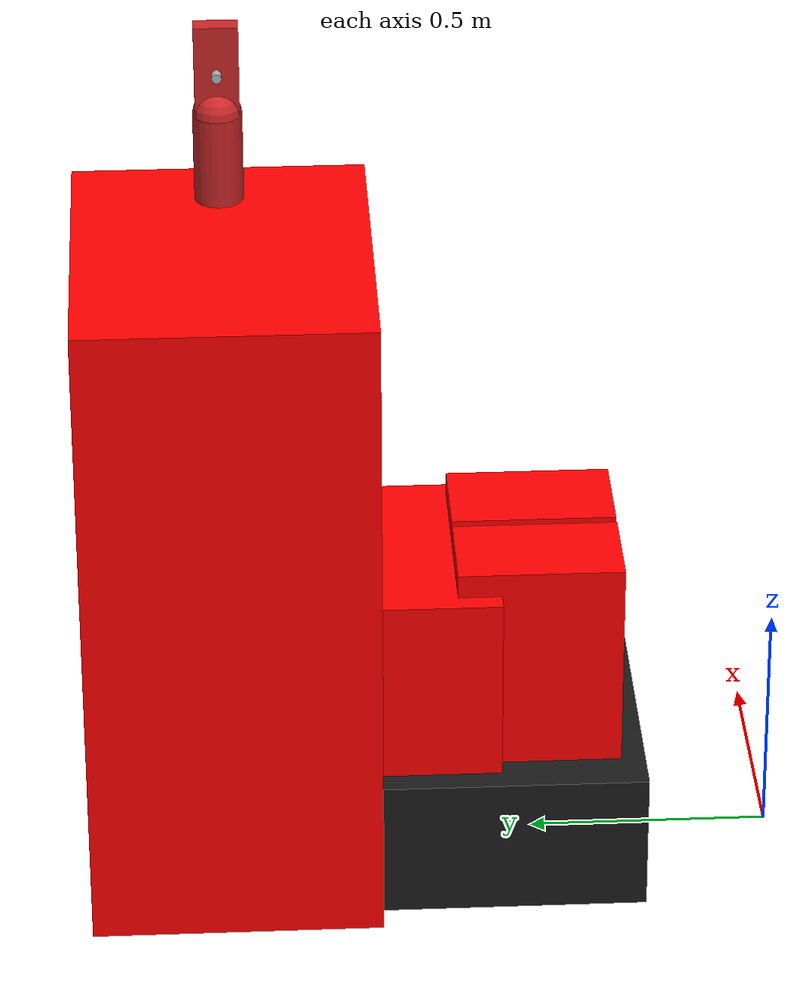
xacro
<?xml version="1.0"?>
<robot xmlns:xacro="http://wiki.ros.org/xacro" name="test">

  <xacro:property name="H" value="2" />

  <xacro:property name="chest_width" value = "${H*0.3662}" />
  <xacro:property name="chest_depth" value = "${H*0.30}" />
  <xacro:property name="chest_height" value = "${H*0.6966}" />

  <!-- Add for independent usage of the person model -->
  <link name="world"/>
  <!-- Chair model -->

  <link name="chair_base" >
    <inertial>
      <origin xyz="0.0 0.0 0.0" />
      <mass value="1.0" />
      <inertia  ixx="1.0" ixy="0.0"  ixz="0.0"  iyy="100.0"  iyz="0.0"  izz="1.0" />
    </inertial>
    <visual>
      <origin xyz="0.0 0.0 0.0" rpy="0.0 0.0 0.0" />
      <geometry>
        <box size="0.60 1.00 0.30"/>
      </geometry>
      <material name="LightGrey">
        <color rgba="0.1 0.1 0.1 1"/>
      </material>
    </visual>
    <collision>
      <origin xyz="0.0 0.0 0.0" rpy="0.0 0.0 0.0" />
      <geometry>
        <box size="0.60 1.00 0.30"/>
      </geometry>
    </collision>
  </link>
  <gazebo reference="chair_base">
    <material>Gazebo/Gray</material>
  </gazebo>

  <joint name="chair_base_joint" type="fixed">
    <parent link="world" />
    <child link = "chair_base" />
    <origin xyz="0.0 0.78 0.15" rpy="0.0 0.0 0.0" />
  </joint>

  <!-- Hip -->

  <link name="body_hip" >
    <inertial>
      <origin xyz="0.0 0.0 0.0" />
      <mass value="1.0" />
      <inertia  ixx="1.0" ixy="0.0"  ixz="0.0"  iyy="100.0"  iyz="0.0"  izz="1.0" />
    </inertial>
    <visual>
      <geometry>
        <box size="0.50 0.40 0.40"/>
        <!--box size="0.40 0.20 0.50"/-->
      </geometry>
      <material name="red">
          <color rgba="1 0 0 1"/>
      </material>
    </visual>
    <collision>
      <origin xyz="0.0 0.0 0.0" rpy="0.0 0.0 0.0" />
      <geometry>
        <box size="0.50 0.40 0.40"/>
        <!--box size="0.40 0.20 0.50"/-->     <!-- (0.387*H) chest height in y direction, (0.259*H)  chest width in z direction-->
      </geometry>
    </collision>
  </link>
  <gazebo reference="body_hip">
    <material>Gazebo/Red</material>
  </gazebo>

  <joint name="body_hip_joint" type="fixed">
   <parent link="chair_base" />
   <child link = "body_hip" />
   <origin xyz="0.0 0.0 0.35" rpy="0.0 0.0 0.0"/>
   <!--origin xyz="0.0 -0.40 -0.2273" rpy="1.57 0.0 -1.57" /-->
  </joint>

<!-- Chest -->
  <link name="body_chest" >
    <inertial>
      <origin xyz="0.0 0.0 0.0" />
      <mass value="1.0" />
      <inertia  ixx="1.0" ixy="0.0"  ixz="0.0"  iyy="100.0"  iyz="0.0"  izz="1.0" />
    </inertial>
    <visual>
      <origin xyz="0.0 0.0 0.0" rpy="0.0 0.0 0.0" />
      <geometry>
        <box size="${chest_width} ${chest_depth}  ${chest_height}"/>
        <!--box size="0.30 0.6966  0.3662"/-->     <!-- (0.387*H) chest height in y direction, (0.259*H)  chest width in z direction-->
      </geometry>
      <material name="red">
        <color rgba="1 0 0 1"/>
      </material>
    </visual>
    <collision>
      <origin xyz="0.0 0.0 0.0" rpy="0.0 0.0 0.0" />
      <geometry>
        <box size="${chest_width} ${chest_depth}  ${chest_height}"/>
        <!--box size="0.30 0.6966  0.3662"/-->     <!-- (0.387*H) chest height in y direction, (0.259*H)  chest width in z direction-->
      </geometry>
    </collision>
  </link>
  <gazebo reference="body_chest">
    <material>Gazebo/Red</material>
  </gazebo>

  <joint name="body_chest_joint" type="fixed">
    <parent link="body_hip" />
    <child link = "body_chest" />
    <origin xyz="0.0 0.35 0.20" rpy="0.0 0.0 0.0"/>
    <!--origin xyz="0.0 -0.05 0.0083" rpy="1.57 0.0 -1.57" /-->   <!-- (0.0 -0.25 0.1483)   (0.387*H/2)-20 origin in z direction -->
  </joint>

  <!-- Head -->
  <link name="body_head" >
    <inertial>
      <origin xyz="0.0 0.0 0.0" />
      <mass value="1.0" />
      <inertia  ixx="1.0" ixy="0.0"  ixz="0.0"  iyy="100.0"  iyz="0.0"  izz="1.0" />
    </inertial>
    <visual>
      <geometry>
        <sphere radius= "0.11"/>   <!-- (0.13*H/2) head radius -->
      </geometry>
      <material name="red">
        <color rgba="1 0 0 1"/>
      </material>
    </visual>
    <collision>
      <geometry>
        <sphere radius= "0.11"/>
      </geometry>
    </collision>
  </link>
  <gazebo reference="body_head">
    <material>Gazebo/Red</material>
  </gazebo>

  <joint name="body_head_joint" type="fixed">
    <parent link="body_chest" />
    <child link = "body_head" />
    <origin xyz="0.0 0.0 0.4583" rpy="0.0 0.0 0.0" />  <!-- 31 cm + head radius in y direction  -->
  </joint>

  <!-- Legs -->
  <link name="body_Lleg" >
    <inertial>
      <origin xyz="0.0 0.0 0.0" />
      <mass value="1.0" />
      <inertia  ixx="1.0" ixy="0.0"  ixz="0.0"  iyy="100.0"  iyz="0.0"  izz="1.0" />
    </inertial>
    <visual>
      <geometry>
        <box size="0.20 0.34 0.50"/>
      </geometry>
      <material name="red">
        <color rgba="1 0 0 1"/>
      </material>
    </visual>
    <collision>
      <origin xyz="0.0 0.0 0.0" rpy="0.0 0.0 0.0" />
      <geometry>
        <box size="0.20 0.34 0.50"/>
        <!--box size="0.30 0.6966  0.3662"/-->     <!-- (0.387*H) chest height in y direction, (0.259*H)  chest width in z direction-->
      </geometry>
    </collision>
  </link>
  <gazebo reference="body_Lleg">
    <material>Gazebo/Red</material>
  </gazebo>

  <joint name="body_Lleg_joint" type="fixed">
    <parent link="body_hip" />
    <child link = "body_Lleg" />
    <origin xyz="0.11 -0.28 0.0" rpy="0.0 0.0 0.0" />
  </joint>

  <link name="body_Rleg" >
    <inertial>
      <origin xyz="0.0 0.0 0.0" />
      <mass value="1.0" />
      <inertia  ixx="1.0" ixy="0.0"  ixz="0.0"  iyy="100.0"  iyz="0.0"  izz="1.0" />
    </inertial>
    <visual>
      <geometry>
        <box size="0.20 0.34 0.50"/>
      </geometry>
      <material name="red">
        <color rgba="1 0 0 1"/>
      </material>
    </visual>
    <collision>
      <origin xyz="0.0 0.0 0.0" rpy="0.0 0.0 0.0" />
      <geometry>
        <box size="0.20 0.34 0.50"/>
        <!--box size="0.30 0.6966  0.3662"/-->     <!-- (0.387*H) chest height in y direction, (0.259*H)  chest width in z direction-->
      </geometry>
    </collision>
  </link>
  <gazebo reference="body_Rleg">
    <material>Gazebo/Red</material>
  </gazebo>

  <joint name="body_Rleg_joint" type="fixed">
    <parent link="body_hip" />
    <child link = "body_Rleg" />
    <origin xyz="-0.11 -0.28 0.0" rpy="0.0 0.0 0.0" />
  </joint>

<!-- Left Arm -->
  <link name="left_shoulder">
    <inertial>
      <origin xyz="0.0 0.0 0.0" />
      <mass value="1.0" />
      <inertia  ixx="1.0" ixy="0.0"  ixz="0.0"  iyy="100.0"  iyz="0.0"  izz="1.0" />
    </inertial>
    <visual>
      <origin rpy="0 0 0" xyz="0 0 0"/>
      <geometry>
        <sphere radius="0.05"/>
      </geometry>
    </visual>
    <collision>
      <geometry>
        <sphere radius= "0.05"/>
      </geometry>
    </collision>
  </link>
  <gazebo reference="left_shoulder">
    <material>Gazebo/Red</material>
  </gazebo>

  <joint name="LShoulder" type="fixed" >
    <origin xyz="0.2331 0.0 0.2855" />
    <!--origin xyz="0.3583 0.0 0.2855" /-->   <!-- (0.259*H)/2 width in z direction, (0.387*H)/2 chest height in y direction  -->
    <parent link="body_chest" />
    <child link="left_shoulder" />
  </joint>

  <link name="left_humerus">
    <inertial>
      <origin xyz="0.0 0.0 0.0" />
      <mass value="1.0" />
      <inertia  ixx="1.0" ixy="0.0"  ixz="0.0"  iyy="100.0"  iyz="0.0"  izz="1.0" />
    </inertial>
    <visual>
      <origin rpy="0 0 0" xyz="0 0 0.1692"/>
      <geometry>
        <cylinder radius="0.05" length="0.3384"/> <!-- 0.188 H lenght   -->
      </geometry>
      <material name="red">
        <color rgba="1 0 0 1"/>
      </material>
    </visual>
    <collision>
      <origin rpy="0 0 0" xyz="0 0 0.1692"/>
      <geometry>
        <cylinder radius="0.05" length="0.3384"/>
      </geometry>
    </collision>
  </link>
  <gazebo reference="left_humerus">
    <material>Gazebo/Red</material>
  </gazebo>

  <joint name="pilar_arm_joint_x" type="revolute">
    <limit effort="1000.0" lower="-3.14" upper="3.14" velocity="0.5"/>
    <!--limit effort="1000.0" lower="1.57" upper="-1.57" velocity="0.2" /-->
    <axis xyz= "1 0 0" />
    <parent link="left_shoulder" />
    <child link = "virtual_shoulder_y" />
    <origin xyz="0.0 0.0 0.0" rpy="0.0 0.0 0.0" />
  </joint>

  <link name="virtual_shoulder_y">
    <inertial>
      <origin xyz="0.0 0.0 0.0" />
      <mass value="1.0" />
      <inertia  ixx="1.0" ixy="0.0"  ixz="0.0"  iyy="100.0"  iyz="0.0"  izz="1.0" />
    </inertial>
  </link>

  <joint name="pilar_arm_joint_y" type="revolute">
    <limit effort="1000.0" lower="-3.14" upper="3.14" velocity="0.5"/>
    <!--limit effort="1000.0" lower="1.57" upper="-1.57" velocity="0.2" /-->
    <axis xyz= "0 1 0" />
    <parent link="virtual_shoulder_y" />
    <child link = "virtual_shoulder_z" />
    <origin xyz="0.0 0.0 0.0" rpy="0.0 0.0 0.0" />
  </joint>

  <link name="virtual_shoulder_z">
    <inertial>
      <origin xyz="0.0 0.0 0.0" />
      <mass value="1.0" />
      <inertia  ixx="1.0" ixy="0.0"  ixz="0.0"  iyy="100.0"  iyz="0.0"  izz="1.0" />
    </inertial>
  </link>

  <joint name="pilar_arm_joint_z" type="revolute">
    <limit effort="1000.0" lower="-3.14" upper="3.14" velocity="0.5"/>
    <!--limit effort="1000.0" lower="1.57" upper="-1.57" velocity="0.2" /-->
    <axis xyz= "0 0 1" />
    <parent link="virtual_shoulder_z" />
    <child link = "left_humerus" />
    <origin xyz="0.0 0.0 0.0" rpy="0.0 0.0 0.0" />
  </joint>

  <link name="left_elbow_joint">
    <inertial>
      <origin xyz="0.0 0.0 0.0" />
      <mass value="1.0" />
      <inertia  ixx="1.0" ixy="0.0"  ixz="0.0"  iyy="100.0"  iyz="0.0"  izz="1.0" />
    </inertial>
    <visual>
      <origin rpy="0 0 0" xyz="0 0 0"/>
      <geometry>
        <cylinder radius="0.01" length="0.1"/>
      </geometry>
      <material name="LightGrey">
        <color rgba="0.7 0.7 0.7 1.0"/>
      </material>
    </visual>
    <collision>
      <geometry>
        <cylinder radius="0.01" length="0.1"/>
      </geometry>
    </collision>
  </link>
  <gazebo reference="left_elbow_joint">
    <material>Gazebo/Gray</material>
  </gazebo>

  <joint name="LElbow" type="revolute" >
    <limit effort="1000.0" lower="-2.67" upper="0" velocity="0.5" />
    <origin rpy="4.71239 0 0" xyz="0 0 0.3384"/>   <!-- z values changes with dimension of the body , 0.188*H/2 -->
    <axis xyz="0 0 1" />
    <parent link="left_humerus" />
    <child link="left_elbow_joint" />
  </joint>

    <!-- left hand -->

  <link name="left_fore_arm">
    <inertial>
      <origin xyz="0.0 0.0 0.0" />
      <mass value="1.0" />
      <inertia  ixx="1.0" ixy="0.0"  ixz="0.0"  iyy="100.0"  iyz="0.0"  izz="1.0" />
    </inertial>
    <visual>
      <origin rpy="0 0 0" xyz="0 0 0 "/>
      <geometry>
        <cylinder radius="0.05" length="0.261"/> <!-- length values changes with dimension of the body 0.145*H -->
      </geometry>
    </visual>
    <collision>
      <geometry>
        <cylinder radius="0.05" length="0.261"/>
      </geometry>
    </collision>
  </link>
  <gazebo reference="left_fore_arm">
    <material>Gazebo/Red</material>
  </gazebo>

  <joint name="LForeArm" type="fixed" >
    <origin rpy="1.5708 0 0" xyz="0.0 -0.1305 0.0" /> <!-- y values changes with dimension of the body, 0.145*H/2  -->
    <parent link="left_elbow_joint" />
    <child link="left_fore_arm" />
  </joint>

  <link name="left_wrist">
    <inertial>
      <origin xyz="0.0 0.0 0.0" />
      <mass value="1.0" />
      <inertia  ixx="1.0" ixy="0.0"  ixz="0.0"  iyy="100.0"  iyz="0.0"  izz="1.0" />
    </inertial>
    <visual>
      <origin rpy="0 0 0" xyz="0 0 0"/>
      <geometry>
        <sphere radius="0.05"/>
      </geometry>
    </visual>
    <collision>
      <geometry>
        <sphere radius= "0.05"/>
      </geometry>
    </collision>
  </link>
  <gazebo reference="left_wrist">
    <material>Gazebo/Red</material>
  </gazebo>

  <joint name="LWrist" type="fixed" >
    <origin xyz="0 0 0.1305" />   <!-- values changes with dimension of the body, 0.145*H/2 -->
    <parent link="left_fore_arm" />
    <child link="left_wrist" />
  </joint>

  <link name="left_wrist_psi_link" >
    <inertial>
      <origin xyz="0.0 0.0 0.0" />
      <mass value="1.0" />
      <inertia  ixx="1.0" ixy="0.0"  ixz="0.0"  iyy="100.0"  iyz="0.0"  izz="1.0" />
    </inertial>
  </link>
  <gazebo reference="left_wrist_psi_link">
    <material>Gazebo/Red</material>
  </gazebo>

  <joint name="LWristPsi" type="revolute" >
    <limit effort="1000.0" lower="-3.14" upper="3.14" velocity="0.5" />
    <origin rpy="0 0 0" />
    <parent link="left_wrist" />
    <child link="left_wrist_psi_link" />
    <axis xyz="0 0 1" />
  </joint>

  <link name="left_wrist_theta_link" >
    <inertial>
      <origin xyz="0.0 0.0 0.0" />
      <mass value="1.0" />
      <inertia  ixx="1.0" ixy="0.0"  ixz="0.0"  iyy="100.0"  iyz="0.0"  izz="1.0" />
    </inertial>
  </link>
  <gazebo reference="left_wrist_theta_link">
    <material>Gazebo/Red</material>
  </gazebo>

  <joint name="LWristTheta" type="revolute" >
    <limit effort="1000.0" lower="-3.14" upper="3.14" velocity="0.5" />
    <origin rpy="1.5708 0 0" />
    <parent link="left_wrist_psi_link"/>
    <child link="left_wrist_theta_link"/>
    <axis xyz="0 0 1" />
  </joint>

  <link name="left_wrist_phi_link" >
    <inertial>
      <origin xyz="0.0 0.0 0.0" />
      <mass value="1.0" />
      <inertia  ixx="1.0" ixy="0.0"  ixz="0.0"  iyy="100.0"  iyz="0.0"  izz="1.0" />
    </inertial>
  </link>
  <gazebo reference="left_wrist_phi_link">
    <material>Gazebo/Red</material>
  </gazebo>

  <joint name="LWristPhi" type="revolute" >
    <limit effort="1000.0" lower="-3.14" upper="3.14" velocity="0.5" />
    <parent link="left_wrist_theta_link"/>
    <child link="left_wrist_phi_link"/>
    <origin rpy="1.5708 0 1.5708" />
    <axis xyz="0 0 1" />
  </joint>

  <link name="left_palm">
    <inertial>
      <origin xyz="0.0 0.0 0.0" />
      <mass value="1.0" />
      <inertia  ixx="1.0" ixy="0.0"  ixz="0.0"  iyy="100.0"  iyz="0.0"  izz="1.0" />
    </inertial>
    <visual>
      <origin rpy="0 0 0" xyz="0 0 0"/>
      <geometry>
        <box size="0.09 0.04 0.1944"/>
      </geometry>
    </visual>
    <collision>
      <origin rpy="0 0 0" xyz="0 0 0"/>
      <geometry>
        <box size="0.09 0.04 0.1944"/>
      </geometry>
    </collision>
  </link>
  <gazebo reference="left_palm">
    <material>Gazebo/Red</material>
  </gazebo>

  <joint name="LPalm" type="fixed" >
    <parent link="left_wrist_phi_link"/>
    <child link="left_palm"/>
    <origin rpy="-1.5708 0 -1.5708" xyz="0.0972 0 0"  />  <!-- x values changes with dimension of the body 0.108*H/2  -->
  </joint>

  <link name="left_palm_sensor">
    <inertial>
      <origin xyz="0.0 0.0 0.0" />
      <mass value="1.0" />
      <inertia  ixx="1.0" ixy="0.0"  ixz="0.0"  iyy="100.0"  iyz="0.0"  izz="1.0" />
    </inertial>
    <visual>
      <origin rpy="0 0 0" xyz="0 0 -0.04"/>
      <geometry>
        <cylinder radius="0.01" length="0.02"/>
      </geometry>
      <material name="LightGrey">
        <color rgba="0.7 0.7 0.7 1.0"/>
      </material>
    </visual>
    <collision>
      <origin rpy="0 0 0" xyz="0 0 -0.04"/>
      <geometry>
        <cylinder radius="0.01" length="0.02"/>
      </geometry>
    </collision>
  </link>
  <gazebo reference="left_palm_sensor">
    <material>Gazebo/Red</material>
  </gazebo>

  <joint name="LSensorPalm" type="fixed" >
    <parent link="left_palm"/>
    <child link="left_palm_sensor"/>
    <origin rpy="1.5708 0 0" xyz="0 0 0" />  <!-- z values changes with dimension of the body  -->
  </joint>

  <transmission name="arm_trans_x">
    <type>transmission_interface/SimpleTransmission</type>
    <joint name="pilar_arm_joint_x">
      <hardwareInterface>hardware_interface/EffortJointInterface</hardwareInterface>
    </joint>
    <actuator name="motor1">
      <mechanicalInterface>1</mechanicalInterface>
    </actuator>
  </transmission>

  <transmission name="arm_trans_y">
    <type>transmission_interface/SimpleTransmission</type>
    <joint name="pilar_arm_joint_y">
      <hardwareInterface>hardware_interface/EffortJointInterface</hardwareInterface>
    </joint>
    <actuator name="motor1">
      <mechanicalInterface>1</mechanicalInterface>
    </actuator>
  </transmission>

  <transmission name="arm_trans_z">
    <type>transmission_interface/SimpleTransmission</type>
    <joint name="pilar_arm_joint_z">
      <hardwareInterface>hardware_interface/EffortJointInterface</hardwareInterface>
    </joint>
    <actuator name="motor1">
      <mechanicalInterface>1</mechanicalInterface>
    </actuator>
  </transmission>

  <transmission name="LElbow_trans">
    <type>transmission_interface/SimpleTransmission</type>
    <joint name="LElbow">
      <hardwareInterface>hardware_interface/EffortJointInterface</hardwareInterface>
    </joint>
    <actuator name="motor1">
      <mechanicalInterface>1</mechanicalInterface>
    </actuator>
  </transmission>

  <transmission name="LWristPsi_trans">
    <type>transmission_interface/SimpleTransmission</type>
    <joint name="LWristPsi">
      <hardwareInterface>hardware_interface/EffortJointInterface</hardwareInterface>
    </joint>
    <actuator name="motor1">
      <mechanicalInterface>1</mechanicalInterface>
    </actuator>
  </transmission>

  <transmission name="LWristTheta_trans">
    <type>transmission_interface/SimpleTransmission</type>
    <joint name="LWristTheta">
      <hardwareInterface>hardware_interface/EffortJointInterface</hardwareInterface>
    </joint>
    <actuator name="motor1">
      <mechanicalInterface>1</mechanicalInterface>
    </actuator>
  </transmission>

  <transmission name="LWristPhi_trans">
    <type>transmission_interface/SimpleTransmission</type>
    <joint name="LWristPhi">
      <hardwareInterface>hardware_interface/EffortJointInterface</hardwareInterface>
    </joint>
    <actuator name="motor1">
      <mechanicalInterface>1</mechanicalInterface>
    </actuator>
  </transmission>

  <gazebo>
    <plugin name="gazebo_ros_control" filename="libgazebo_ros_control.so">
    </plugin>
  </gazebo>

</robot>
